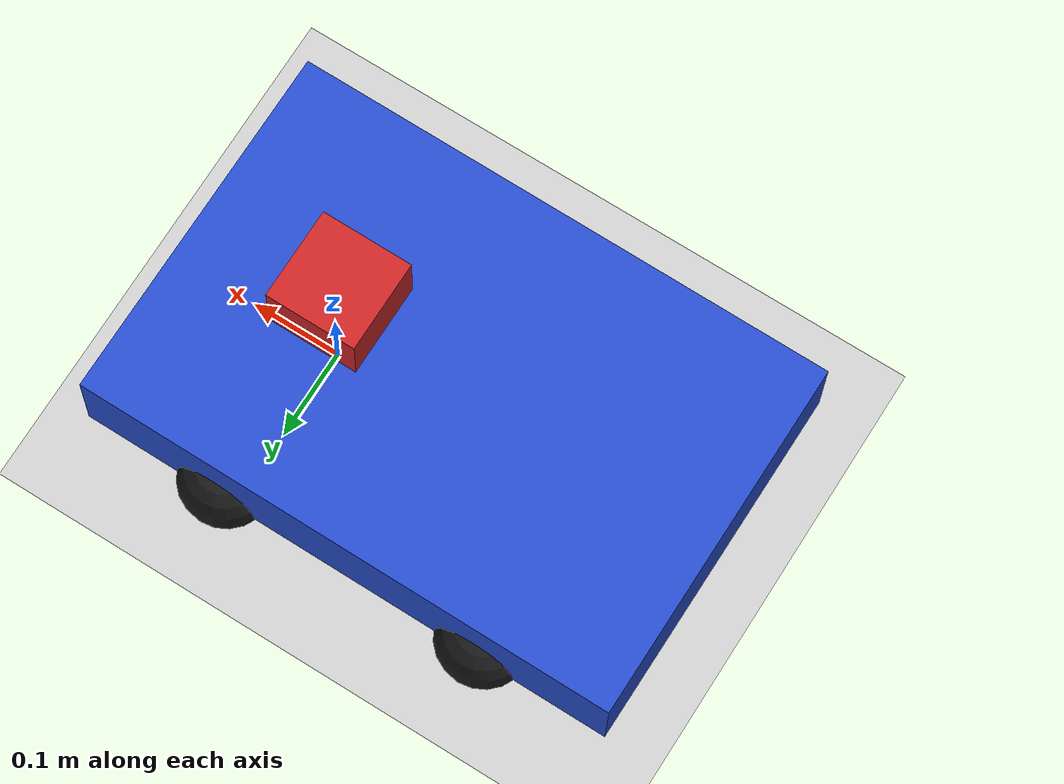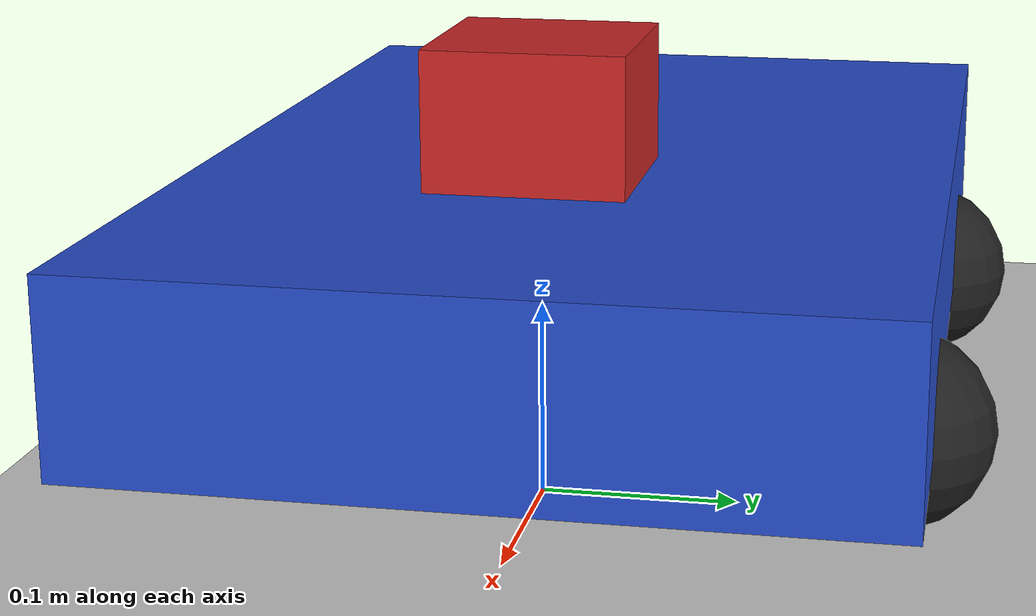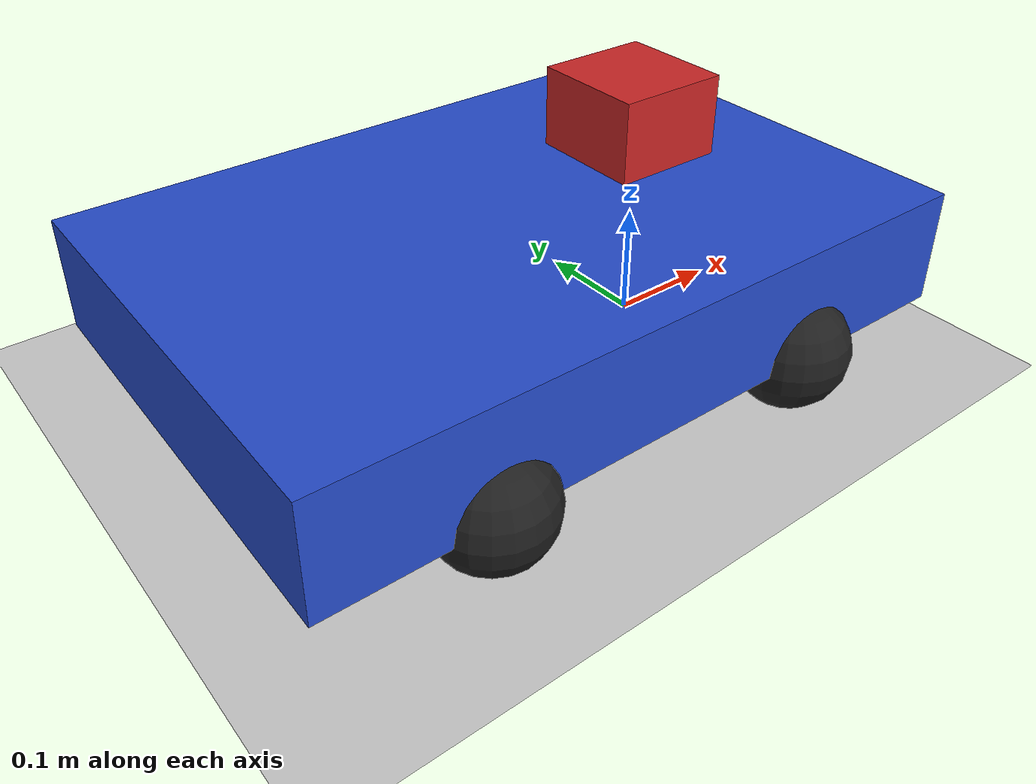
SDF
<sdf version="1.6">
 <world name="default">
  <light name="sun" type="directional">
   <pose>0 0 10 0 -0 0</pose>
   <diffuse>0.8 0.8 0.8 1</diffuse>
   <specular>0.2 0.2 0.2 1</specular>
   <attenuation>
    <range>1000</range>
    <constant>0.9</constant>
    <linear>0.01</linear>
    <quadratic>0.001</quadratic>
   </attenuation>
   <direction>-0.5 0.1 -0.9</direction>
  </light>
  <model name="ground_plane">
   <static>1</static>
   <link name="link">
    <collision name="collision">
     <geometry><plane><normal>0 0 1</normal><size>100 100</size></plane></geometry>
     <surface><friction><ode><mu>100</mu><mu2>50</mu2></ode></friction></surface>
    </collision>
    <visual name="visual">
     <cast_shadows>0</cast_shadows>
     <geometry><plane><normal>0 0 1</normal><size>100 100</size></plane></geometry>
     <material>
      <script><uri>file://media/materials/scripts/gazebo.material</uri><name>Gazebo/Grey</name></script>
     </material>
    </visual>
   </link>
  </model>
  <gravity>0 0 -9.8</gravity>
  <magnetic_field>6e-06 2.3e-05 -4.2e-05</magnetic_field>
  <atmosphere type="adiabatic"/>
  <physics name="default_physics" default="0" type="ode">
   <max_step_size>0.001</max_step_size>
   <real_time_factor>1</real_time_factor>
   <real_time_update_rate>1000</real_time_update_rate>
  </physics>
  <scene><ambient>0.4 0.4 0.4 1</ambient><background>0.7 0.7 0.7 1</background><shadows>1</shadows></scene>
  <audio><device>default</device></audio>
  <spherical_coordinates>
   <surface_model>EARTH_WGS84</surface_model>
   <latitude_deg>0</latitude_deg>
   <longitude_deg>0</longitude_deg>
   <elevation>0</elevation>
   <heading_deg>0</heading_deg>
  </spherical_coordinates>
  <model name="mobile_robot">
   <link name="base_footprint">
    <inertial>
     <pose>0 0 0.14 0 -0 0</pose>
     <mass>1</mass>
     <inertia><ixx>0.083</ixx><ixy>0</ixy><ixz>0</ixz><iyy>0.083</iyy><iyz>0</iyz><izz>0.083</izz></inertia>
    </inertial>
    <collision name="base_footprint_fixed_joint_lump__base_link_collision">
     <pose>0 0 0.04 0 -0 0</pose>
     <geometry><box><size>0.6 0.4 0.1</size></box></geometry>
    </collision>
    <collision name="base_footprint_fixed_joint_lump__ultrasonic_sensor_link_collision_1">
     <pose>0.13 0 0.14 0 -0 0</pose>
     <geometry><box><size>0.1 0.1 0.07</size></box></geometry>
    </collision>
    <visual name="base_footprint_visual"><geometry><box><size>0.001 0.001 0.001</size></box></geometry></visual>
    <visual name="base_footprint_fixed_joint_lump__base_link_visual_1">
     <pose>0 0 0.04 0 -0 0</pose>
     <geometry><box><size>0.6 0.4 0.1</size></box></geometry>
     <material>
      <script><name>Gazebo/Blue</name><uri>file://media/materials/scripts/gazebo.material</uri></script>
     </material>
    </visual>
    <visual name="base_footprint_fixed_joint_lump__ultrasonic_sensor_link_visual_2">
     <pose>0.13 0 0.14 0 -0 0</pose>
     <geometry><box><size>0.1 0.1 0.07</size></box></geometry>
     <material>
      <script><name>Gazebo/Red</name><uri>file://media/materials/scripts/gazebo.material</uri></script>
     </material>
    </visual>
    <sensor name="ultrasonic" type="ray">
     <visualize>1</visualize>
     <update_rate>40</update_rate>
     <ray>
      <scan>
       <horizontal>
        <samples>720</samples>
        <resolution>0.1</resolution>
        <min_angle>-1.57</min_angle>
        <max_angle>1.57</max_angle>
       </horizontal>
       <vertical><samples>1</samples><min_angle>0</min_angle><max_angle>0</max_angle></vertical>
      </scan>
      <range><min>0.1</min><max>30</max><resolution>0.01</resolution></range>
      <noise><type>gaussian</type><mean>0</mean><stddev>0.01</stddev></noise>
     </ray>
     <plugin name="gazebo_ros_ultrasonic_controller" filename="libgazebo_ros_laser.so">
      <topicName>/scan</topicName>
      <frameName>ultrasonic</frameName>
      <robotNamespace>/</robotNamespace>
     </plugin>
     <pose>0.13 0 0.14 0 -0 0</pose>
    </sensor>
   </link>
   <link name="left_back_wheel_link">
    <pose>-0.15 -0.18 0.04 0 -0 0</pose>
    <inertial>
     <mass>0.1</mass>
     <inertia><ixx>0.1</ixx><ixy>0</ixy><ixz>0</ixz><iyy>0.1</iyy><iyz>0</iyz><izz>0.1</izz></inertia>
    </inertial>
    <collision name="left_back_wheel_link_collision">
     <pose>0 0 -0.05 0 -0 0</pose>
     <geometry><sphere><radius>0.05</radius></sphere></geometry>
     <surface>
      <contact><ode><kp>1e+06</kp><kd>100</kd><max_vel>1</max_vel><min_depth>0</min_depth></ode></contact>
      <friction><ode><mu>1</mu><mu2>1</mu2></ode></friction>
     </surface>
    </collision>
    <visual name="left_back_wheel_link_visual">
     <pose>0 0 -0.05 0 -0 0</pose>
     <geometry><sphere><radius>0.05</radius></sphere></geometry>
     <material>
      <script><name>Gazebo/Black</name><uri>file://media/materials/scripts/gazebo.material</uri></script>
     </material>
    </visual>
   </link>
   <joint name="left_back_wheel_joint" type="revolute">
    <child>left_back_wheel_link</child>
    <parent>base_footprint</parent>
    <axis>
     <xyz>0 0 1</xyz>
     <limit><lower>-1e+16</lower><upper>1e+16</upper></limit>
     <dynamics>
      <damping>1</damping>
      <friction>1</friction>
      <spring_reference>0</spring_reference>
      <spring_stiffness>0</spring_stiffness>
     </dynamics>
     <use_parent_model_frame>1</use_parent_model_frame>
    </axis>
   </joint>
   <link name="left_front_wheel_link">
    <pose>0.15 -0.18 0.04 0 -0 0</pose>
    <inertial>
     <mass>0.1</mass>
     <inertia><ixx>0.1</ixx><ixy>0</ixy><ixz>0</ixz><iyy>0.1</iyy><iyz>0</iyz><izz>0.1</izz></inertia>
    </inertial>
    <collision name="left_front_wheel_link_collision">
     <pose>0 0 -0.05 0 -0 0</pose>
     <geometry><sphere><radius>0.05</radius></sphere></geometry>
     <surface>
      <contact><ode><kp>1e+06</kp><kd>100</kd><max_vel>1</max_vel><min_depth>0</min_depth></ode></contact>
      <friction><ode><mu>1</mu><mu2>1</mu2></ode></friction>
     </surface>
    </collision>
    <visual name="left_front_wheel_link_visual">
     <pose>0 0 -0.05 0 -0 0</pose>
     <geometry><sphere><radius>0.05</radius></sphere></geometry>
     <material>
      <script><name>Gazebo/Black</name><uri>file://media/materials/scripts/gazebo.material</uri></script>
     </material>
    </visual>
   </link>
   <joint name="left_front_wheel_joint" type="revolute">
    <child>left_front_wheel_link</child>
    <parent>base_footprint</parent>
    <axis>
     <xyz>0 0 1</xyz>
     <limit><lower>-1e+16</lower><upper>1e+16</upper></limit>
     <dynamics>
      <damping>1</damping>
      <friction>1</friction>
      <spring_reference>0</spring_reference>
      <spring_stiffness>0</spring_stiffness>
     </dynamics>
     <use_parent_model_frame>1</use_parent_model_frame>
    </axis>
   </joint>
   <link name="right_back_wheel_link">
    <pose>-0.15 0.18 0.04 0 -0 0</pose>
    <inertial>
     <mass>0.1</mass>
     <inertia><ixx>0.1</ixx><ixy>0</ixy><ixz>0</ixz><iyy>0.1</iyy><iyz>0</iyz><izz>0.1</izz></inertia>
    </inertial>
    <collision name="right_back_wheel_link_collision">
     <pose>0 0 -0.05 0 -0 0</pose>
     <geometry><sphere><radius>0.05</radius></sphere></geometry>
     <surface>
      <contact><ode><kp>1e+06</kp><kd>100</kd><max_vel>1</max_vel><min_depth>0</min_depth></ode></contact>
      <friction><ode><mu>1</mu><mu2>1</mu2></ode></friction>
     </surface>
    </collision>
    <visual name="right_back_wheel_link_visual">
     <pose>0 0 -0.05 0 -0 0</pose>
     <geometry><sphere><radius>0.05</radius></sphere></geometry>
     <material>
      <script><name>Gazebo/Black</name><uri>file://media/materials/scripts/gazebo.material</uri></script>
     </material>
    </visual>
   </link>
   <joint name="right_back_wheel_joint" type="revolute">
    <child>right_back_wheel_link</child>
    <parent>base_footprint</parent>
    <axis>
     <xyz>0 0 1</xyz>
     <limit><lower>-1e+16</lower><upper>1e+16</upper></limit>
     <dynamics>
      <damping>1</damping>
      <friction>1</friction>
      <spring_reference>0</spring_reference>
      <spring_stiffness>0</spring_stiffness>
     </dynamics>
     <use_parent_model_frame>1</use_parent_model_frame>
    </axis>
   </joint>
   <link name="right_front_wheel_link">
    <pose>0.15 0.18 0.04 0 -0 0</pose>
    <inertial>
     <mass>0.1</mass>
     <inertia><ixx>0.1</ixx><ixy>0</ixy><ixz>0</ixz><iyy>0.1</iyy><iyz>0</iyz><izz>0.1</izz></inertia>
    </inertial>
    <collision name="right_front_wheel_link_collision">
     <pose>0 0 -0.05 0 -0 0</pose>
     <geometry><sphere><radius>0.05</radius></sphere></geometry>
     <surface>
      <contact><ode><kp>1e+06</kp><kd>100</kd><max_vel>1</max_vel><min_depth>0</min_depth></ode></contact>
      <friction><ode><mu>1</mu><mu2>1</mu2></ode></friction>
     </surface>
    </collision>
    <visual name="right_front_wheel_link_visual">
     <pose>0 0 -0.05 0 -0 0</pose>
     <geometry><sphere><radius>0.05</radius></sphere></geometry>
     <material>
      <script><name>Gazebo/Black</name><uri>file://media/materials/scripts/gazebo.material</uri></script>
     </material>
    </visual>
   </link>
   <joint name="right_front_wheel_joint" type="revolute">
    <child>right_front_wheel_link</child>
    <parent>base_footprint</parent>
    <axis>
     <xyz>0 0 1</xyz>
     <limit><lower>-1e+16</lower><upper>1e+16</upper></limit>
     <dynamics>
      <damping>1</damping>
      <friction>1</friction>
      <spring_reference>0</spring_reference>
      <spring_stiffness>0</spring_stiffness>
     </dynamics>
     <use_parent_model_frame>1</use_parent_model_frame>
    </axis>
   </joint>
   <static>0</static>
   <plugin name="skid_steer_drive_controller" filename="libgazebo_ros_skid_steer_drive.so">
    <updateRate>10.0</updateRate>
    <robotNamespace>/</robotNamespace>
    <leftFrontJoint>left_front_wheel_joint</leftFrontJoint>
    <rightFrontJoint>right_front_wheel_joint</rightFrontJoint>
    <leftRearJoint>left_back_wheel_joint</leftRearJoint>
    <rightRearJoint>right_back_wheel_joint</rightRearJoint>
    <wheelSeparation>0.4</wheelSeparation>
    <wheelDiameter>0.2</wheelDiameter>
    <robotBaseFrame>base_footprint</robotBaseFrame>
    <torque>10</torque>
    <topicName>cmd_vel</topicName>
    <odometryTopic>odom</odometryTopic>
    <odometryFrame>odom</odometryFrame>
    <commandTopic>/cmd_vel</commandTopic>
    <topic_name_twist>cmd_vel</topic_name_twist>
    <topic_name_odometry>odom</topic_name_odometry>
    <topic_name_joint>joint</topic_name_joint>
    <broadcastTF>1</broadcastTF>
    <covariance_x>0.0001</covariance_x>
    <covariance_y>0.0001</covariance_y>
    <covariance_yaw>0.01</covariance_yaw>
   </plugin>
   <pose>-0.138065 3.8e-05 0.059997 0 -0 -0.005168</pose>
  </model>
 </world>
</sdf>
